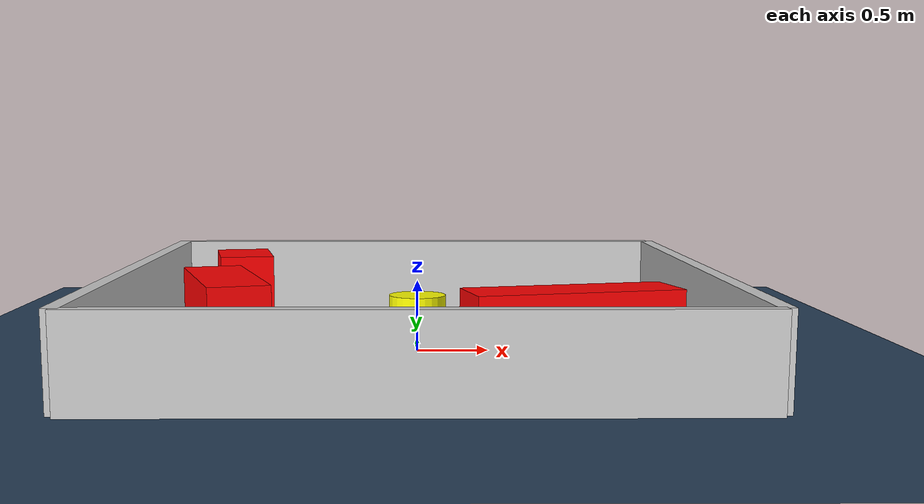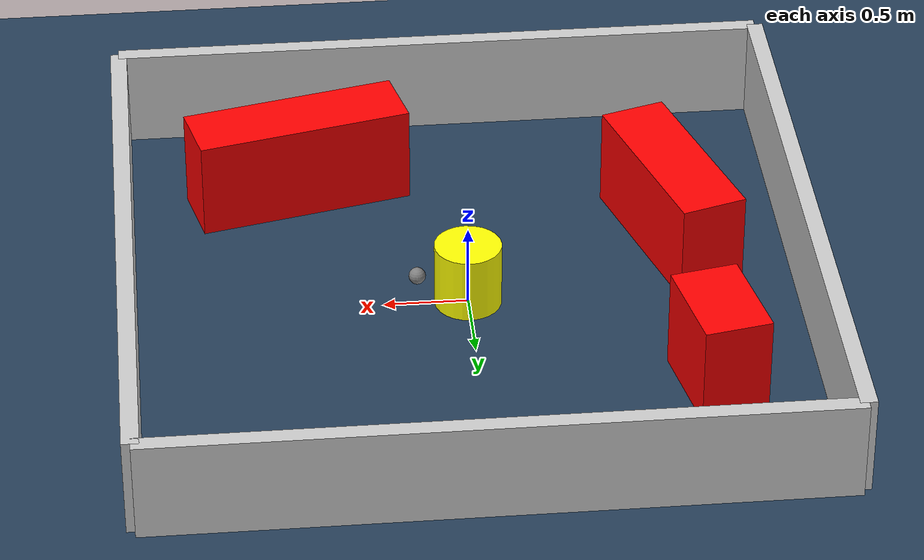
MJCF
<?xml version="1.0" ?>
<mujoco model="generated_environment">
  <option timestep="0.01" integrator="RK4" cone="elliptic"/>
  <default>
    <geom density="1"/>
  </default>
  <asset>
    <texture builtin="gradient" height="3072" rgb1="0.3 0.5 0.7" rgb2="0 0 0" type="skybox" width="512"/>
    <texture builtin="checker" height="300" mark="edge" markrgb="0.8 0.8 0.8" name="groundplane" rgb1="0.2 0.3 0.4" rgb2="0.1 0.2 0.3" type="2d" width="300"/>
    <material name="groundplane" reflectance="0.2" texrepeat="5 5" texture="groundplane" texuniform="true"/>
    <material name="robot" rgba="0.0 1.0 0.0 1"/>
  </asset>
  <worldbody>
    <light dir="0 0 -1" directional="true" pos="0 0 1.5"/>
    <geom condim="4" friction="1.0 0.005 0.001" material="groundplane" name="floor" size="0 0 0.05" type="plane"/>
    <body name="walls">
      <geom name="wall_1" condim="4" pos="-2.0 0.0 0.3" rgba="0.800000011920929 0.800000011920929 0.800000011920929 1.0" size="0.05 2.0 0.3" type="box"/>
      <geom name="wall_2" condim="4" pos="2.0 0.0 0.3" rgba="0.800000011920929 0.800000011920929 0.800000011920929 1.0" size="0.05 2.0 0.3" type="box"/>
      <geom name="wall_3" condim="4" pos="0.0 -2.0 0.3" rgba="0.800000011920929 0.800000011920929 0.800000011920929 1.0" size="2.0 0.05 0.3" type="box"/>
      <geom name="wall_4" condim="4" pos="0.0 2.0 0.3" rgba="0.800000011920929 0.800000011920929 0.800000011920929 1.0" size="2.0 0.05 0.3" type="box"/>
    </body>
    <body name="robot">
      <joint name="joint_x" type="slide" pos="0 0 0" axis="1 0 0"/>
      <joint name="joint_y" type="slide" pos="0 0 0" axis="0 1 0"/>
      <geom name="robot" type="sphere" pos="0.3 0.0 0.2" size="0.05" mass="5." friction="1.0 0.005 0.0001" condim="4" rgba="0.5 0.5 0.5 1.0"/>
      <site name="sensor_ball"/>
    </body>
    <body name="obstacle_movable_1">
      <geom name="obstacle_movable_1" condim="4" pos="0.0 0.0 0.2" euler="0 0 0.0" friction="1.0 0.005 0.001" rgba="1.0 1.0 0.0 1.0" size="0.2 0.2 0.0" type="cylinder" mass="0.1"/>
      <joint type="free"/>
    </body>
    <body name="obstacle_2_static">
      <geom name="obstacle_2_static" condim="4" pos="-1.2759458199700056 -0.5271377244369646 0.3" euler="0 0 287.3012407932171" friction="1.0 0.005 0.001" rgba="1 0 0 1" size="0.5817002107914481 0.2 0.3" type="box"/>
    </body>
    <body name="obstacle_3_static">
      <geom name="obstacle_3_static" condim="4" pos="-1.346898761856113 0.9620651659921837 0.3" euler="0 0 281.11616637723586" friction="1.0 0.005 0.001" rgba="1 0 0 1" size="0.3050598094415941 0.2 0.3" type="box"/>
    </body>
    <body name="obstacle_4_static">
      <geom name="obstacle_4_static" condim="4" pos="0.9355726588685962 -1.195972967570158 0.3" euler="0 0 193.42167194193632" friction="1.0 0.005 0.001" rgba="1 0 0 1" size="0.6547195746169717 0.2 0.3" type="box"/>
    </body>
  </worldbody>
  <actuator>
    <motor name="actuator_x" joint="joint_x" gear="1" ctrlrange="-1 1"/>
    <motor name="actuator_y" joint="joint_y" gear="1" ctrlrange="-1 1"/>
  </actuator>
</mujoco>
